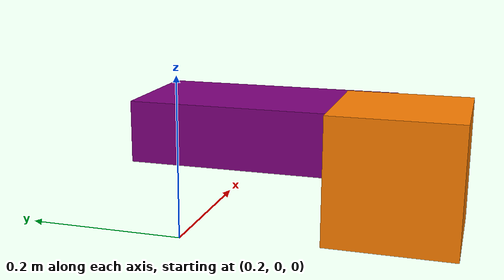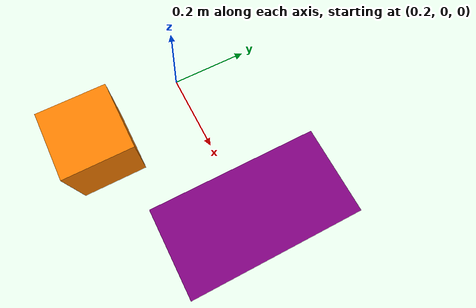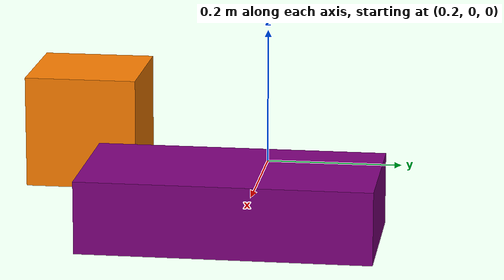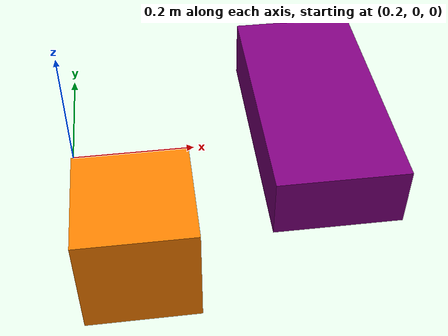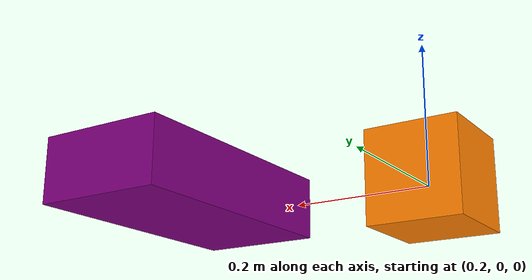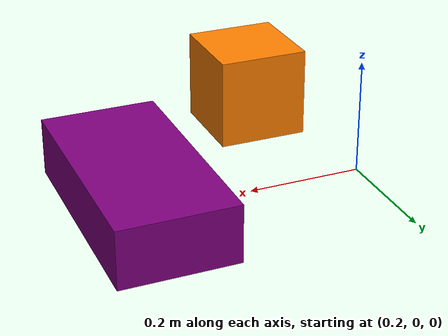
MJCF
<mujoco model="boxes">
  <worldbody>

    <body name="purple_box" pos="0.6 0.0 0.05">
      <freejoint/>
      <geom type="box" size="0.1 0.2 0.05" rgba="0.5 0.0 0.5 1.0"/>
      <inertial pos="0 0 0" mass="5.0" diaginertia="1.0 1.0 1.0"/>
    </body>

    <body name="orange_box" pos="0.3 -0.25 0.08">
      <freejoint/>
      <geom type="box" size="0.08 0.08 0.08" rgba="1.0 0.5 0.0 1.0"/>
      <inertial pos="0 0 0" mass="3.0" diaginertia="0.5 0.5 0.5"/>
    </body>

  </worldbody>
</mujoco>
